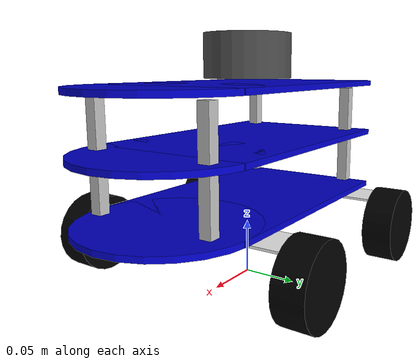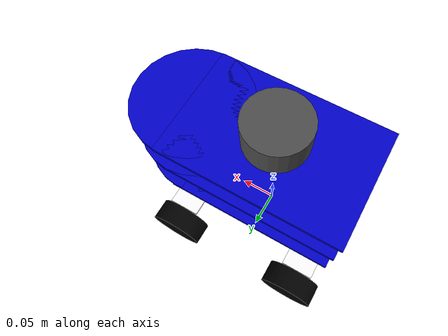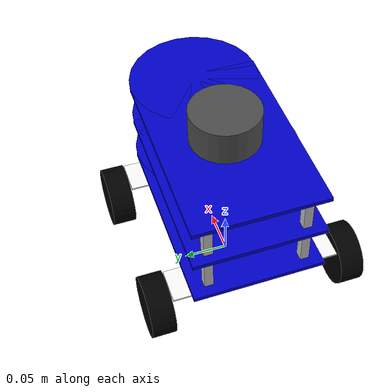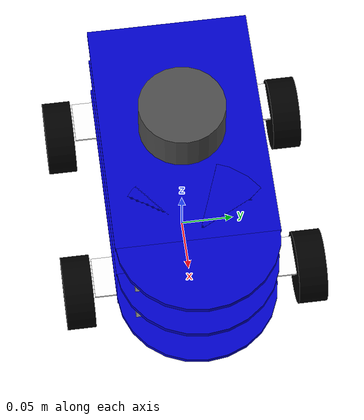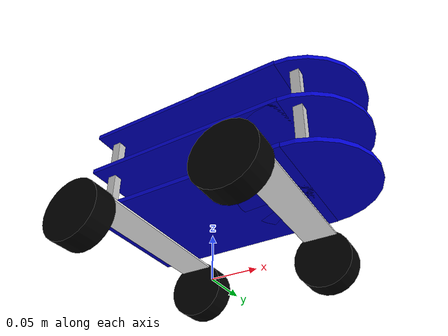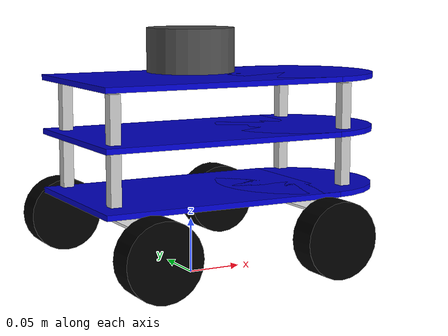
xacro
<?xml version="1.0"?>
 <robot name="allbot_4" xmlns:xacro="http://ros.org/wiki/xacro">
  <xacro:include filename="$(find allbot_urdf)/urdf/common_properties.xacro"/>
  <link name="base_footprint"/>

  <joint name="base_joint" type="fixed">
    <parent link="base_footprint"/>
    <child link="base_link"/>
    <origin xyz="0.0 0.0 0.010" rpy="0 0 0"/>
  </joint>

  <link name="base_link">
    <visual>
      <geometry>
        <box size="0.23 0.15 0.005"/>
      </geometry>
      <origin rpy="0 0 0" xyz="0 0 0.065"/>
      <material name="blue"/>
    </visual>
  </link>

  <link name="base_link_head">
    <visual>
      <geometry>
        <cylinder length="0.005" radius="0.075"/>
      </geometry>
      <origin rpy="0 0 0" xyz="0.11 0 0.065"/>
      <material name="blue"/>
    </visual>
  </link>

    <link name="perception_deck">
      <visual>
        <geometry>
          <box size="0.23 0.15 0.005"/>
        </geometry>
        <origin rpy="0 0 0" xyz="0 0 0.12"/>
        <material name="blue"/>
      </visual>
    </link>

    <link name="perception_deck_head">
      <visual>
        <geometry>
          <cylinder length="0.005" radius="0.075"/>
        </geometry>
        <origin rpy="0 0 0" xyz="0.11 0 0.12"/>
        <material name="blue"/>
      </visual>
    </link>

    <link name="lidar_deck">  <!-- jay -->
      <visual>
        <geometry>
          <box size="0.23 0.15 0.005"/>
        </geometry>
        <origin rpy="0 0 0" xyz="0 0 0.17"/>
        <material name="blue"/>
      </visual>
    </link>

    <link name="lidar_deck_head">
      <visual>
        <geometry>
          <cylinder length="0.005" radius="0.075"/>
        </geometry>
        <origin rpy="0 0 0" xyz="0.11 0 0.17"/>
        <material name="blue"/>
      </visual>
    </link>

    <link name="wheel_rear_left">
      <visual>
        <geometry>
          <cylinder length="0.027" radius="0.0345"/>
        </geometry>
        <origin rpy="1.57 0 0" xyz="-0.085 0.11 0.0345"/>
        <material name="black"/>
      </visual>
    </link>

    <link name="wheel_rear_right">
      <visual>
        <geometry>
          <cylinder length="0.027" radius="0.0345"/>
        </geometry>
        <origin rpy="1.57 0 0" xyz="-0.085 -0.11 0.0345"/>
        <material name="black"/>
      </visual>
    </link>

    <link name="wheel_front_left">
      <visual>
        <geometry>
          <cylinder length="0.027" radius="0.0345"/>
        </geometry>
        <origin rpy="1.57 0 0" xyz="0.085 -0.11 0.0345"/>
        <material name="black"/>
      </visual>
    </link>

    <link name="wheel_front_right">
      <visual>
        <geometry>
          <cylinder length="0.027" radius="0.0345"/>
        </geometry>
        <origin rpy="1.57 0 0" xyz="0.085 0.11 0.0345"/>
        <material name="black"/>
      </visual>
    </link>

    <link name="wheel_rear_track">
      <visual>
        <geometry>
          <box size="0.04 0.19 0.002"/>
        </geometry>
        <origin rpy="0 0 0" xyz="-0.085 0.0 0.06"/>
        <material name="white"/>
      </visual>
    </link>

    <link name="wheel_front_track">
      <visual>
        <geometry>
          <box size="0.04 0.19 0.002"/>
        </geometry>
        <origin rpy="0 0 0" xyz="0.085 0.0 0.06"/>
        <material name="white"/>
      </visual>
    </link>

    <link name="lidar">
      <visual>
        <origin rpy="0 0 0.0" xyz="0 0 0"/>
        <geometry>
         <cylinder length="0.04" radius="0.04"/>
        </geometry>
        <material name="dark"/>
      </visual>
    </link>

    <link name="left_rear_pole">
      <visual>
        <geometry>
          <box size="0.01 0.01 0.095"/>
        </geometry>
        <origin rpy="0 0 0" xyz="-0.10 0.055 0.1175"/>
        <material name="silver"/>
      </visual>
    </link>

    <link name="left_front_pole">
      <visual>
        <geometry>
          <box size="0.01 0.01 0.095"/>
        </geometry>
        <origin rpy="0 0 0" xyz="0.13 0.055 0.1175"/>
        <material name="silver"/>
      </visual>
    </link>

    <link name="right_rear_pole">
      <visual>
        <geometry>
          <box size="0.01 0.01 0.095"/>
        </geometry>
        <origin rpy="0 0 0" xyz="-0.10 -0.055 0.1175"/>
        <material name="silver"/>
      </visual>
    </link>

    <link name="right_front_pole">
      <visual>
        <geometry>
          <box size="0.01 0.01 0.095"/>
        </geometry>
        <origin rpy="0 0 0" xyz="0.13 -0.055 0.1175"/>
        <material name="silver"/>
      </visual>
    </link>

    <joint name="base_to_base_link_head" type="fixed">
      <parent link="base_link"/>
      <child link="base_link_head"/>
      <origin xyz="0 0 0"/>
    </joint>

    <joint name="base_to_lidar_deck" type="fixed">
      <parent link="base_link"/>
      <child link="lidar_deck"/>
      <origin xyz="0 0 0"/>
    </joint>

    <joint name="base_to_lidar_deck_head" type="fixed">
      <parent link="base_link"/>
      <child link="lidar_deck_head"/>
      <origin xyz="0 0 0"/>
    </joint>

    <joint name="base_to_wheel_front_left" type="continuous">
      <parent link="base_link"/>
      <child link="wheel_front_left"/>
      <origin xyz="0 0 0"/>
    </joint>

    <joint name="base_to_wheel_front_right" type="continuous">
      <parent link="base_link"/>
      <child link="wheel_front_right"/>
      <origin xyz="0 0 0"/>
    </joint>

    <joint name="base_to_wheel_rear_left" type="continuous">
      <parent link="base_link"/>
      <child link="wheel_rear_left"/>
      <origin xyz="0 0 0"/>
    </joint>

    <joint name="base_to_wheel_rear_right" type="continuous">
      <parent link="base_link"/>
      <child link="wheel_rear_right"/>
      <origin xyz="0 0 0"/>
    </joint>

    <joint name="base_to_wheel_front_track" type="fixed">
      <parent link="base_link"/>
      <child link="wheel_front_track"/>
      <origin xyz="0 0 0"/>
    </joint>

    <joint name="base_to_wheel_rear_track" type="fixed">
      <parent link="base_link"/>
      <child link="wheel_rear_track"/>
      <origin xyz="0 0 0"/>
    </joint>

    <joint name="base_to_laser" type="fixed">
      <parent link="base_link"/>
      <child link="lidar"/>
      <origin xyz="0.0 0.0 0.1960"/>
    </joint>

    <joint name="base_to_left_pole_one" type="fixed">
      <parent link="base_link"/>
      <child link="left_rear_pole"/>
      <origin xyz="0 0 0"/>
    </joint>

    <joint name="base_to_left_pole_two" type="fixed">
      <parent link="base_link"/>
      <child link="left_front_pole"/>
      <origin xyz="0 0 0"/>
    </joint>

    <joint name="base_to_right_pole_one" type="fixed">
      <parent link="base_link"/>
      <child link="right_rear_pole"/>
      <origin xyz="0 0 0"/>
    </joint>

    <joint name="base_to_right_pole_two" type="fixed">
      <parent link="base_link"/>
      <child link="right_front_pole"/>
      <origin xyz="0 0 0"/>
    </joint>

    <joint name="base_to_perception_deck" type="fixed">
      <parent link="base_link"/>
      <child link="perception_deck"/>
      <origin xyz="0 0 0"/>
    </joint>

    <joint name="base_to_perception_deck_head" type="fixed">
      <parent link="base_link"/>
      <child link="perception_deck_head"/>
      <origin xyz="0 0 0"/>
    </joint>

</robot>

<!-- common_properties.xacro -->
<robot name="xacro_properties" xmlns:xacro="http://ros.org/wiki/xacro">

  <!-- Init colour -->
  <material name="black">
      <color rgba="0.0 0.0 0.0 1.0"/>
  </material>

  <material name="dark">
    <color rgba="0.3 0.3 0.3 1.0"/>
  </material>
  <material name="light_black">
    <color rgba="0.4 0.4 0.4 1.0"/>
  </material>

  <material name="blue">
    <color rgba="0.0 0.0 0.8 1.0"/>
  </material>

  <material name="green">
    <color rgba="0.0 0.8 0.0 1.0"/>
  </material>

  <material name="grey">
    <color rgba="0.5 0.5 0.5 1.0"/>
  </material>

  <material name="orange">
    <color rgba="${255/255} ${108/255} ${10/255} 1.0"/>
  </material>

  <material name="brown">
    <color rgba="${222/255} ${207/255} ${195/255} 1.0"/>
  </material>

  <material name="red">
    <color rgba="0.8 0.0 0.0 1.0"/>
  </material>

  <material name="white">
    <color rgba="1.0 1.0 1.0 1.0"/>
  </material>

  <material name="silver">
    <color rgba="192 192 192 0.6"/>
  </material>

</robot>
